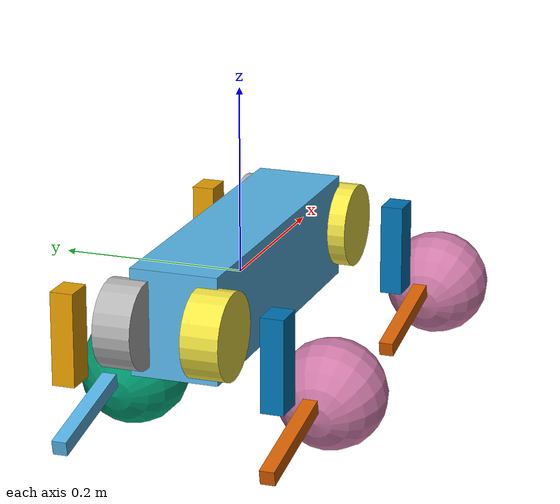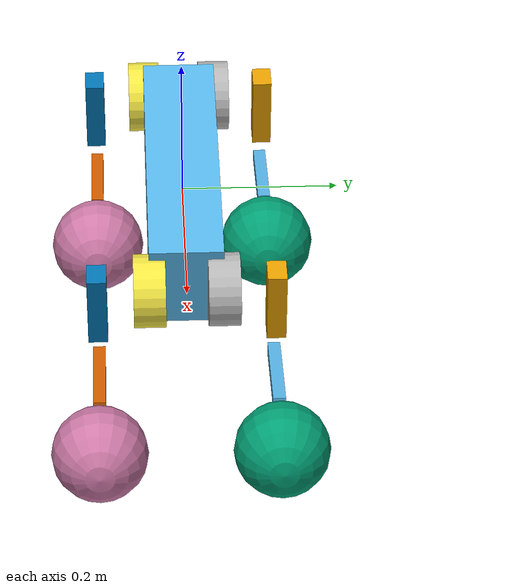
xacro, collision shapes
<robot name="go2" xmlns:xacro="http://www.ros.org/wiki/xacro">
    <xacro:property name="scale_model" value="2.0"/>

    <xacro:arg name="DEBUG" default="false"/>

    <xacro:include filename="$(find go2_description)/xacro/const.xacro"/>
    <xacro:include filename="$(find go2_description)/xacro/materials.xacro"/>
    <xacro:include filename="$(find go2_description)/xacro/leg.xacro"/>
    <xacro:include filename="$(find go2_description)/xacro/gazebo.xacro"/>

    <!-- Rotor related joint and link is only for demonstrate location. -->
    <!-- Actually, the rotor will rotate and the joint is not fixed. Reduction ratio should be considered. -->

    <!-- Debug mode will hung up the robot, use "true" or "false" to switch it. -->
    <xacro:if value="$(arg DEBUG)">
        <link name="world"/>
        <joint name="base_static_joint" type="fixed">
            <origin rpy="0 0 0" xyz="0 0 0"/>
            <parent link="world"/>
            <child link="base_link"/>
        </joint>
    </xacro:if>

    <link name="base_link">
        <visual>
            <origin rpy="0 0 0" xyz="0 0 0"/>
            <geometry>
                <box size="0.001 0.001 0.001"/>
            </geometry>
        </visual>
    </link>

    <joint name="floating_base" type="fixed">
        <origin rpy="0 0 0" xyz="0 0 0"/>
        <parent link="base_link"/>
        <child link="trunk"/>
    </joint>

    <link name="trunk">
        <visual>
            <origin rpy="0 0 0" xyz="0 0 0"/>
            <geometry>
                <mesh filename="file://$(find go2_description)/meshes/base_link.STL" scale="${scale_model} ${scale_model} ${scale_model}"/>
            </geometry>
        </visual>
        <collision>
            <origin rpy="0 0 0" xyz="0 0 0"/>
            <geometry>
                <box size="${trunk_length} ${trunk_width} ${trunk_height}"/>
            </geometry>
        </collision>
        <inertial>
            <origin rpy="0 0 0" xyz="${trunk_com_x} ${trunk_com_y} ${trunk_com_z}"/>
            <mass value="${trunk_mass}"/>
            <inertia
                ixx="${trunk_ixx}" ixy="${trunk_ixy}" ixz="${trunk_ixz}"
                iyy="${trunk_iyy}" iyz="${trunk_iyz}"
                izz="${trunk_izz}"/>
        </inertial>
    </link>

    <joint name="imu_joint" type="fixed">
        <parent link="trunk"/>
        <child link="imu_link"/>
        <origin rpy="0 0 0" xyz="0 0 0"/>
    </joint>

    <link name="imu_link">
        <inertial>
            <mass value="0.001"/>
            <origin rpy="0 0 0" xyz="0 0 0"/>
            <inertia ixx="0.0001" ixy="0" ixz="0" iyy="0.0001" iyz="0" izz="0.0001"/>
        </inertial>
        <visual>
            <origin rpy="0 0 0" xyz="0 0 0"/>
            <geometry>
                <box size="0.001 0.001 0.001"/>
            </geometry>
        </visual>
        <collision>
            <origin rpy="0 0 0" xyz="0 0 0"/>
            <geometry>
                <box size=".001 .001 .001"/>
            </geometry>
        </collision>
    </link>

    <xacro:leg name="rf" mirror="-1" mirror_dae= "False" front_hind="1"  front_hind_dae="True"  />
    <xacro:leg name="lf" mirror="1"  mirror_dae="True"   front_hind="1"  front_hind_dae="True"  />
    <xacro:leg name="rh" mirror="-1" mirror_dae="False"  front_hind="-1" front_hind_dae="False" />
    <xacro:leg name="lh" mirror="1"  mirror_dae="True"   front_hind="-1" front_hind_dae="False" />

</robot>

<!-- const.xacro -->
<robot xmlns:xacro="http://www.ros.org/wiki/xacro">

    <!-- Constants for robot dimensions -->
    <xacro:property name="PI" value="3.1415926535897931"/>
    <xacro:property name="stick_mass" value="0.00001"/>

    <!-- simplified collision value -->
    <xacro:property name="trunk_width" value="0.0935"/>
    <xacro:property name="trunk_length" value="0.3762"/>
    <xacro:property name="trunk_height" value="0.114"/>
    <xacro:property name="hip_radius" value="0.046"/>
    <xacro:property name="hip_length" value="0.04"/>
    <xacro:property name="thigh_shoulder_radius" value="0.041"/>
    <xacro:property name="thigh_shoulder_length" value="0.032"/>
    <xacro:property name="thigh_width" value="0.0245"/>
    <xacro:property name="thigh_height" value="0.034"/>
    <xacro:property name="calf_width" value="0.016"/>
    <xacro:property name="calf_height" value="0.016"/>
    <xacro:property name="foot_radius" value="0.01"/>
    <xacro:property name="stick_radius" value="0.01"/>
    <xacro:property name="stick_length" value="0.2"/>

    <!-- kinematic value -->
    <xacro:property name="thigh_offset" value="0.0955"/>
    <xacro:property name="thigh_length" value="0.1"/>
    <xacro:property name="calf_length" value="0.133"/>

    <!-- leg offset from trunk center value -->
    <xacro:property name="leg_offset_x" value="0.1934"/>
    <xacro:property name="leg_offset_y" value="0.0465"/>

    <xacro:property name="hip_offset" value="-0.03"/>

    <!-- offset of link locations (left front) -->
    <xacro:property name="hip_offset_x" value="0.1934"/>
    <xacro:property name="hip_offset_y" value="0.0465"/>
    <xacro:property name="hip_offset_z" value="0.0"/>

    <xacro:property name="thigh_offset_x" value="0"/>
    <xacro:property name="thigh_offset_y" value="0.0955"/>
    <xacro:property name="thigh_offset_z" value="0.0"/>

    <xacro:property name="calf_offset_x" value="0.0"/>
    <xacro:property name="calf_offset_y" value="0.0"/>
    <xacro:property name="calf_offset_z" value="-0.213"/>

    <!-- joint limits -->
    <xacro:property name="damping" value="0.01"/>
    <xacro:property name="friction" value="0.2"/>
    <xacro:property name="hip_position_max" value="1.0472"/>
    <xacro:property name="hip_position_min" value="-1.0472"/>
    <xacro:property name="hip_velocity_max" value="30.1"/>
    <xacro:property name="hip_torque_max" value="80.0"/>
    <xacro:property name="thigh_position_max" value="3.4907"/>
    <xacro:property name="thigh_position_min" value="-1.5708"/>
    <xacro:property name="thigh_velocity_max" value="30.1"/>
    <xacro:property name="thigh_torque_max" value="80.0"/>
    <xacro:property name="calf_position_max" value="-0.83776"/>
    <xacro:property name="calf_position_min" value="-2.7227"/>
    <xacro:property name="calf_velocity_max" value="20.06"/>
    <xacro:property name="calf_torque_max" value="80.0"/>

    <!-- dynamics inertial value -->
    <!-- trunk -->
    <xacro:property name="trunk_mass" value="1.921"/>
    <xacro:property name="trunk_com_x" value="0.11112"/>
    <xacro:property name="trunk_com_y" value="0.00"/>
    <xacro:property name="trunk_com_z" value="-0.005366"/>
    <xacro:property name="trunk_ixx" value="0.02448"/>
    <xacro:property name="trunk_ixy" value="0.00012166"/>
    <xacro:property name="trunk_ixz" value="0.0014849"/>
    <xacro:property name="trunk_iyy" value="0.098077"/>
    <xacro:property name="trunk_iyz" value="-3.12E-05"/>
    <xacro:property name="trunk_izz" value="0.107"/>

    <!-- hip (left front) -->
    <xacro:property name="hip_mass" value="0.378"/>
    <xacro:property name="hip_com_x" value="-0.0054"/>
    <xacro:property name="hip_com_y" value="0.00194"/>
    <xacro:property name="hip_com_z" value="-0.000105"/>
    <xacro:property name="hip_ixx" value="0.00048"/>
    <xacro:property name="hip_ixy" value="-3.01E-06"/>
    <xacro:property name="hip_ixz" value="1.11E-06"/>
    <xacro:property name="hip_iyy" value="0.000884"/>
    <xacro:property name="hip_iyz" value="-1.42E-06"/>
    <xacro:property name="hip_izz" value="0.000596"/>

    <!-- thigh -->
    <xacro:property name="thigh_mass" value="0.152"/>
    <xacro:property name="thigh_com_x" value="-0.00374"/>
    <xacro:property name="thigh_com_y" value="-0.0323"/>
    <xacro:property name="thigh_com_z" value="-0.0327"/>
    <xacro:property name="thigh_ixx" value="0.00584"/>
    <xacro:property name="thigh_ixy" value="8.72E-05"/>
    <xacro:property name="thigh_ixz" value="-0.000289"/>
    <xacro:property name="thigh_iyy" value="0.0058"/>
    <xacro:property name="thigh_iyz" value="0.000808"/>
    <xacro:property name="thigh_izz" value="0.00103"/>

    <!-- calf -->
    <xacro:property name="calf_mass" value="0.154"/>
    <xacro:property name="calf_com_x" value="-0.0374"/>
    <xacro:property name="calf_com_y" value="-0.0323"/>
    <xacro:property name="calf_com_z" value="-0.0115"/>
    <xacro:property name="calf_ixx" value="0.00108"/>
    <xacro:property name="calf_ixy" value="3.4E-07"/>
    <xacro:property name="calf_ixz" value="1.72E-05"/>
    <xacro:property name="calf_iyy" value="0.0011"/>
    <xacro:property name="calf_iyz" value="8.28E-06"/>
    <xacro:property name="calf_izz" value="3.29E-05"/>

    <!-- foot -->
    <xacro:property name="foot_mass" value="0.154"/>

</robot>

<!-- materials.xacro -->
<robot xmlns:xacro="http://www.ros.org/wiki/xacro">

    <material name="grey">
        <color rgba="0.529 0.549 0.549 1"/>
    </material>

    <material name="light_grey">
        <color rgba="0.898 0.917 0.929 1"/>
    </material>

    <material name="dark_grey">
        <color rgba="0.055 0.055 0.055 1"/>
    </material>

    <material name="white">
        <color rgba="1 1 1 1"/>
    </material>

</robot>

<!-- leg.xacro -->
<robot xmlns:xacro="http://www.ros.org/wiki/xacro">
    <xacro:property name="scale_model" value="2.0"/>

    <xacro:macro name="leg" params="name mirror mirror_dae front_hind front_hind_dae">

        <joint name="${name}_hip_joint" type="revolute">
            <xacro:if value="${(mirror_dae == False) and (front_hind_dae == True)}">
                <origin rpy="0 0 0" xyz="${leg_offset_x} ${-leg_offset_y} 0"/>
            </xacro:if>
            <xacro:if value="${(mirror_dae == True) and (front_hind_dae == True)}">
                <origin rpy="0 0 0" xyz="${leg_offset_x} ${leg_offset_y} 0"/>
            </xacro:if>
            <xacro:if value="${(mirror_dae == False) and (front_hind_dae == False)}">
                <origin rpy="0 0 0" xyz="${-leg_offset_x} ${-leg_offset_y} 0"/>
            </xacro:if>
            <xacro:if value="${(mirror_dae == True) and (front_hind_dae == False)}">
                <origin rpy="0 0 0" xyz="${-leg_offset_x} ${leg_offset_y} 0"/>
            </xacro:if>
            <parent link="trunk"/>
            <child link="${name}_hip_link"/>
            <axis xyz="1 0 0"/>
            <dynamics damping="${damping}" friction="${friction}"/>
            <xacro:if value="${(mirror_dae == True)}">
                <limit effort="${hip_torque_max}" velocity="${hip_velocity_max}" lower="${hip_position_min}" upper="${hip_position_max}"/>
            </xacro:if>
            <xacro:if value="${(mirror_dae == False)}">
                <limit effort="${hip_torque_max}" velocity="${hip_velocity_max}" lower="${-hip_position_max}" upper="${-hip_position_min}"/>
            </xacro:if>
        </joint>

        <link name="${name}_hip_link">
            <visual>
                <xacro:if value="${(mirror_dae == True) and (front_hind_dae == True)}">
                    <origin rpy="0 0 0" xyz="0 0 0"/>
                </xacro:if>
                <xacro:if value="${(mirror_dae == False) and (front_hind_dae == True)}">
                    <origin rpy="${PI} 0 0" xyz="0 0 0"/>
                </xacro:if>
                <xacro:if value="${(mirror_dae == True) and (front_hind_dae == False)}">
                    <origin rpy="0 ${PI} 0" xyz="0 0 0"/>
                </xacro:if>
                <xacro:if value="${(mirror_dae == False) and (front_hind_dae == False)}">
                    <origin rpy="${PI} ${PI} 0" xyz="0 0 0"/>
                </xacro:if>
                <geometry>
                    <mesh filename="file://$(find go2_description)/meshes/${name}_hip_link.STL" scale="${scale_model} ${scale_model} ${scale_model}"/>
                </geometry>
            </visual>
            <collision>
                <origin rpy="${PI/2.0} 0 0" xyz="0 0 0"/>
                <geometry>
                    <cylinder length="${hip_length}" radius="${hip_radius}"/>
                </geometry>
            </collision>
            <inertial>
                <origin rpy="0 0 0" xyz="${hip_com_x*front_hind} ${hip_com_y*mirror} ${hip_com_z}"/>
                <mass value="${hip_mass}"/>
                <inertia
                    ixx="${hip_ixx}" ixy="${hip_ixy*mirror*front_hind}" ixz="${hip_ixz*front_hind}"
                    iyy="${hip_iyy}" iyz="${hip_iyz*mirror}"
                    izz="${hip_izz}"/>
            </inertial>
        </link>

        <joint name="${name}_upper_leg_joint" type="revolute">
            <origin rpy="0 0 0" xyz="0 ${thigh_offset*mirror} 0"/>
            <parent link="${name}_hip_link"/>
            <child link="${name}_upper_leg_link"/>
            <axis xyz="0 1 0"/>
            <dynamics damping="${damping}" friction="${friction}"/>
            <limit effort="${thigh_torque_max}" velocity="${thigh_velocity_max}" lower="${thigh_position_min}" upper="${thigh_position_max}"/>
        </joint>

        <link name="${name}_upper_leg_link">
            <visual>
                <origin rpy="0 0 0" xyz="0 0 0"/>
                <geometry>
                    <mesh filename="file://$(find go2_description)/meshes/${name}_upper_leg_link.STL" scale="${scale_model} ${scale_model} ${scale_model}"/>
                </geometry>
            </visual>
            <collision>
                <origin rpy="0 ${PI/2.0} 0" xyz="0 ${hip_offset*mirror} -0.02"/>
                <geometry>
                    <box size="${thigh_length} ${thigh_width} ${thigh_height}"/>
                </geometry>
            </collision>
            <inertial>
                <origin rpy="0 0 0" xyz="${thigh_com_x} ${thigh_com_y*mirror} ${thigh_com_z}"/>
                <mass value="${thigh_mass}"/>
                <inertia
                    ixx="${thigh_ixx}" ixy="${thigh_ixy*mirror}" ixz="${thigh_ixz}"
                    iyy="${thigh_iyy}" iyz="${thigh_iyz*mirror}"
                    izz="${thigh_izz}"/>
            </inertial>
        </link>

        <joint name="${name}_lower_leg_joint" type="revolute">
            <origin rpy="0 0 0" xyz="0 0 ${-thigh_length}"/>
            <parent link="${name}_upper_leg_link"/>
            <child link="${name}_lower_leg_link"/>
            <axis xyz="0 1 0"/>
            <dynamics damping="${damping}" friction="${friction}"/>
            <limit effort="${calf_torque_max}" velocity="${calf_velocity_max}" lower="${calf_position_min}" upper="${calf_position_max}"/>
        </joint>

        <link name="${name}_lower_leg_link">
            <visual>
                <origin rpy="0 0 0" xyz="0 0 0"/>
                <geometry>
                    <mesh filename="file://$(find go2_description)/meshes/${name}_lower_leg_link.STL" scale="${scale_model} ${scale_model} ${scale_model}"/>
                </geometry>
            </visual>
            <collision>
                <origin rpy="0 ${PI/2.0} 0" xyz="-0.025 ${hip_offset*mirror} -0.03"/>
                <geometry>
                    <box size="${calf_length} ${calf_width} ${calf_height}"/>
                </geometry>
            </collision>
            <inertial>
                <origin rpy="0 0 0" xyz="${calf_com_x} ${calf_com_y*mirror} ${calf_com_z}"/>
                <mass value="${calf_mass}"/>
                <inertia
                    ixx="${calf_ixx}" ixy="${calf_ixy*mirror}" ixz="${calf_ixz}"
                    iyy="${calf_iyy}" iyz="${calf_iyz*mirror}"
                    izz="${calf_izz}"/>
            </inertial>
        </link>

        <joint name="${name}_foot_joint" type="fixed">0
            <origin rpy="0 0 0" xyz="0 0 ${-(calf_length)}"/>
            <parent link="${name}_lower_leg_link"/>
            <child link="${name}_foot_link"/>
        </joint>

        <link name="${name}_foot_link">
            <visual>
                <origin rpy="0 0 0" xyz="-0.05 ${hip_offset*mirror} -0.028"/>
                <geometry>
                    <sphere radius="${foot_radius-0.01}"/>
                </geometry>
            </visual>
            <collision>
                <origin rpy="0 0 0" xyz="-0.05 ${hip_offset*mirror} -0.028"/>
                <geometry>
                    <sphere radius="${foot_radius+0.05}"/>
                </geometry>
                <surface>
                    <friction>
                        <ode>
                            <mu>000.2</mu>
                            <mu2>000.2</mu2>
                        </ode>
                    </friction>
                    <contact>
                        <ode>
                            <kp>100000</kp>
                            <kd>100</kd>
                        </ode>
                    </contact>
                </surface>
            </collision>
            <inertial>
                <origin rpy="0 0 0" xyz="${calf_com_x} ${calf_com_y*mirror} ${calf_com_z}"/>
                <mass value="${foot_mass}"/>
                <inertia
                    ixx="${(2*foot_mass)/5.0*(foot_radius*foot_radius)}" ixy="0.0" ixz="0.0"
                    iyy="${(2*foot_mass)/5.0*(foot_radius*foot_radius)}" iyz="0.0"
                    izz="${(2*foot_mass)/5.0*(foot_radius*foot_radius)}"/>
            </inertial>
        </link>

        <ros2_control name="${name}" type="system">
            <hardware>
                <plugin>gz_ros2_control/GazeboSimSystem</plugin>
            </hardware>
            <joint name="${name}_hip_joint">
                <command_interface name="effort"/>
                <state_interface name="position"/>
                <state_interface name="velocity"/>
            </joint>

            <joint name="${name}_upper_leg_joint">
                <command_interface name="effort"/>
                <state_interface name="position"/>
                <state_interface name="velocity"/>
            </joint>

            <joint name="${name}_lower_leg_joint">
                <command_interface name="effort"/>
                <state_interface name="position"/>
                <state_interface name="velocity"/>
            </joint>
        </ros2_control>

    </xacro:macro>
</robot>
